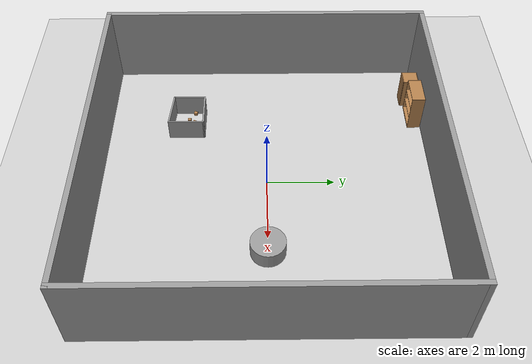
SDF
<sdf version="1.6">
 <world name="default">
  <light name="sun" type="directional">
   <pose>0 0 10 0 -0 0</pose>
   <diffuse>0.8 0.8 0.8 1</diffuse>
   <specular>0.2 0.2 0.2 1</specular>
   <attenuation>
    <range>1000</range>
    <constant>0.9</constant>
    <linear>0.01</linear>
    <quadratic>0.001</quadratic>
   </attenuation>
   <direction>-0.5 0.1 -0.9</direction>
  </light>
  <model name="ground_plane">
   <static>1</static>
   <link name="link">
    <collision name="collision">
     <geometry><plane><normal>0 0 1</normal><size>100 100</size></plane></geometry>
     <surface><friction><ode><mu>100</mu><mu2>50</mu2></ode></friction></surface>
    </collision>
    <visual name="visual">
     <cast_shadows>0</cast_shadows>
     <geometry><plane><normal>0 0 1</normal><size>100 100</size></plane></geometry>
     <material>
      <script><uri>file://media/materials/scripts/gazebo.material</uri><name>Gazebo/Grey</name></script>
     </material>
    </visual>
   </link>
  </model>
  <gravity>0 0 -9.8</gravity>
  <magnetic_field>6e-06 2.3e-05 -4.2e-05</magnetic_field>
  <atmosphere type="adiabatic"/>
  <physics name="default_physics" default="0" type="ode">
   <max_step_size>0.001</max_step_size>
   <real_time_factor>1</real_time_factor>
   <real_time_update_rate>1000</real_time_update_rate>
  </physics>
  <scene><ambient>0.4 0.4 0.4 1</ambient><background>0.7 0.7 0.7 1</background><shadows>1</shadows></scene>
  <audio><device>default</device></audio>
  <spherical_coordinates>
   <surface_model>EARTH_WGS84</surface_model>
   <latitude_deg>0</latitude_deg>
   <longitude_deg>0</longitude_deg>
   <elevation>0</elevation>
   <heading_deg>0</heading_deg>
  </spherical_coordinates>
  <model name="Untitled">
   <link name="Wall_0">
    <collision name="Wall_0_Collision">
     <geometry><box><size>10.15 0.15 2.5</size></box></geometry>
     <pose>0 0 1.25 0 -0 0</pose>
    </collision>
    <visual name="Wall_0_Visual">
     <pose>0 0 1.25 0 -0 0</pose>
     <geometry><box><size>10.15 0.15 2.5</size></box></geometry>
     <material>
      <script><uri>file://media/materials/scripts/gazebo.material</uri><name>Gazebo/Grey</name></script>
      <ambient>1 1 1 1</ambient>
     </material>
     <meta><layer>0</layer></meta>
    </visual>
    <pose>5 0 0 0 -0 1.5708</pose>
   </link>
   <link name="Wall_3">
    <collision name="Wall_3_Collision">
     <geometry><box><size>10.15 0.15 2.5</size></box></geometry>
     <pose>0 0 1.25 0 -0 0</pose>
    </collision>
    <visual name="Wall_3_Visual">
     <pose>0 0 1.25 0 -0 0</pose>
     <geometry><box><size>10.15 0.15 2.5</size></box></geometry>
     <material>
      <script><uri>file://media/materials/scripts/gazebo.material</uri><name>Gazebo/Grey</name></script>
      <ambient>1 1 1 1</ambient>
     </material>
     <meta><layer>0</layer></meta>
    </visual>
    <pose>0 5 0 0 -0 3.14159</pose>
   </link>
   <link name="Wall_7">
    <collision name="Wall_7_Collision">
     <geometry><box><size>10.15 0.15 2.5</size></box></geometry>
     <pose>0 0 1.25 0 -0 0</pose>
    </collision>
    <visual name="Wall_7_Visual">
     <pose>0 0 1.25 0 -0 0</pose>
     <geometry><box><size>10.15 0.15 2.5</size></box></geometry>
     <material>
      <script><uri>file://media/materials/scripts/gazebo.material</uri><name>Gazebo/Grey</name></script>
      <ambient>1 1 1 1</ambient>
     </material>
     <meta><layer>0</layer></meta>
    </visual>
    <pose>-5 0 0 0 -0 -1.5708</pose>
   </link>
   <link name="Wall_9">
    <collision name="Wall_9_Collision">
     <geometry><box><size>10.15 0.15 2.5</size></box></geometry>
     <pose>0 0 1.25 0 -0 0</pose>
    </collision>
    <visual name="Wall_9_Visual">
     <pose>0 0 1.25 0 -0 0</pose>
     <geometry><box><size>10.15 0.15 2.5</size></box></geometry>
     <material>
      <script><uri>file://media/materials/scripts/gazebo.material</uri><name>Gazebo/Grey</name></script>
      <ambient>1 1 1 1</ambient>
     </material>
     <meta><layer>0</layer></meta>
    </visual>
    <pose>0 -5 0 0 -0 0</pose>
   </link>
   <static>1</static>
  </model>
  <model name="bookshelf">
   <static>1</static>
   <link name="link">
    <inertial><mass>1</mass></inertial>
    <collision name="back">
     <pose>0 0.005 0.6 0 -0 0</pose>
     <geometry><box><size>0.9 0.01 1.2</size></box></geometry>
    </collision>
    <visual name="visual1">
     <pose>0 0.005 0.6 0 -0 0</pose>
     <geometry><box><size>0.9 0.01 1.2</size></box></geometry>
     <material>
      <script><uri>file://media/materials/scripts/gazebo.material</uri><name>Gazebo/Wood</name></script>
     </material>
    </visual>
    <collision name="left_side">
     <pose>0.45 -0.195 0.6 0 -0 0</pose>
     <geometry><box><size>0.02 0.4 1.2</size></box></geometry>
    </collision>
    <visual name="visual2">
     <pose>0.45 -0.195 0.6 0 -0 0</pose>
     <geometry><box><size>0.02 0.4 1.2</size></box></geometry>
     <material>
      <script><uri>file://media/materials/scripts/gazebo.material</uri><name>Gazebo/Wood</name></script>
     </material>
    </visual>
    <collision name="right_side">
     <pose>-0.45 -0.195 0.6 0 -0 0</pose>
     <geometry><box><size>0.02 0.4 1.2</size></box></geometry>
    </collision>
    <visual name="visual3">
     <pose>-0.45 -0.195 0.6 0 -0 0</pose>
     <geometry><box><size>0.02 0.4 1.2</size></box></geometry>
     <material>
      <script><uri>file://media/materials/scripts/gazebo.material</uri><name>Gazebo/Wood</name></script>
     </material>
    </visual>
    <collision name="bottom">
     <pose>0 -0.195 0.03 0 -0 0</pose>
     <geometry><box><size>0.88 0.4 0.06</size></box></geometry>
    </collision>
    <visual name="visual4">
     <pose>0 -0.195 0.03 0 -0 0</pose>
     <geometry><box><size>0.88 0.4 0.06</size></box></geometry>
     <material>
      <script><uri>file://media/materials/scripts/gazebo.material</uri><name>Gazebo/Wood</name></script>
     </material>
    </visual>
    <collision name="top">
     <pose>0 -0.195 1.19 0 -0 0</pose>
     <geometry><box><size>0.88 0.4 0.02</size></box></geometry>
    </collision>
    <visual name="visual5">
     <pose>0 -0.195 1.19 0 -0 0</pose>
     <geometry><box><size>0.88 0.4 0.02</size></box></geometry>
     <material>
      <script><uri>file://media/materials/scripts/gazebo.material</uri><name>Gazebo/Wood</name></script>
     </material>
    </visual>
    <collision name="low_shelf">
     <pose>0 -0.195 0.43 0 -0 0</pose>
     <geometry><box><size>0.88 0.4 0.02</size></box></geometry>
    </collision>
    <visual name="visual6">
     <pose>0 -0.195 0.43 0 -0 0</pose>
     <geometry><box><size>0.88 0.4 0.02</size></box></geometry>
     <material>
      <script><uri>file://media/materials/scripts/gazebo.material</uri><name>Gazebo/Wood</name></script>
     </material>
    </visual>
    <collision name="high_shelf">
     <pose>0 -0.195 0.8 0 -0 0</pose>
     <geometry><box><size>0.88 0.4 0.02</size></box></geometry>
    </collision>
    <visual name="visual7">
     <pose>0 -0.195 0.8 0 -0 0</pose>
     <geometry><box><size>0.88 0.4 0.02</size></box></geometry>
     <material>
      <script><uri>file://media/materials/scripts/gazebo.material</uri><name>Gazebo/Wood</name></script>
     </material>
    </visual>
   </link>
   <pose>-2.72611 4.9059 0 0 -0 0</pose>
  </model>
  <model name="Untitled_0">
   <pose>-2.45722 -2.4934 0 0 -0 0</pose>
   <link name="Wall_11">
    <collision name="Wall_11_Collision">
     <geometry><box><size>1.01485 0.05 0.7</size></box></geometry>
     <pose>0 0 0.35 0 -0 0</pose>
    </collision>
    <visual name="Wall_11_Visual">
     <pose>0 0 0.35 0 -0 0</pose>
     <geometry><box><size>1.01485 0.05 0.7</size></box></geometry>
     <material>
      <script><uri>file://media/materials/scripts/gazebo.material</uri><name>Gazebo/Grey</name></script>
      <ambient>1 1 1 1</ambient>
     </material>
     <meta><layer>0</layer></meta>
    </visual>
    <pose>-0.545174 0.051007 0 0 -0 1.56583</pose>
   </link>
   <link name="Wall_13">
    <collision name="Wall_13_Collision">
     <geometry><box><size>1.15 0.05 0.7</size></box></geometry>
     <pose>0 0 0.35 0 -0 0</pose>
    </collision>
    <visual name="Wall_13_Visual">
     <pose>0 0 0.35 0 -0 0</pose>
     <geometry><box><size>1.15 0.05 0.7</size></box></geometry>
     <material>
      <script><uri>file://media/materials/scripts/gazebo.material</uri><name>Gazebo/Grey</name></script>
      <ambient>1 1 1 1</ambient>
     </material>
     <meta><layer>0</layer></meta>
    </visual>
    <pose>0.007222 0.533403 0 0 -0 0</pose>
   </link>
   <link name="Wall_14">
    <collision name="Wall_14_Collision">
     <geometry><box><size>1.11484 0.05 0.7</size></box></geometry>
     <pose>0 0 0.35 0 -0 0</pose>
    </collision>
    <visual name="Wall_14_Visual">
     <pose>0 0 0.35 0 -0 0</pose>
     <geometry><box><size>1.11484 0.05 0.7</size></box></geometry>
     <material>
      <script><uri>file://media/materials/scripts/gazebo.material</uri><name>Gazebo/Grey</name></script>
      <ambient>1 1 1 1</ambient>
     </material>
     <meta><layer>0</layer></meta>
    </visual>
    <pose>0.554826 0.001007 0 0 -0 -1.5753</pose>
   </link>
   <link name="Wall_15">
    <collision name="Wall_15_Collision">
     <geometry><box><size>1.15454 0.05 0.7</size></box></geometry>
     <pose>0 0 0.35 0 -0 0</pose>
    </collision>
    <visual name="Wall_15_Visual">
     <pose>0 0 0.35 0 -0 0</pose>
     <geometry><box><size>1.15454 0.05 0.7</size></box></geometry>
     <material>
      <script><uri>file://media/materials/scripts/gazebo.material</uri><name>Gazebo/Grey</name></script>
      <ambient>1 1 1 1</ambient>
     </material>
     <meta><layer>0</layer></meta>
    </visual>
    <pose>-0.005174 -0.481388 0 0 -0 3.05093</pose>
   </link>
   <static>1</static>
  </model>
  <model name="wood_cube_10cm">
   <link name="link">
    <pose>0 0 0.05 0 -0 0</pose>
    <inertial>
     <mass>0.5167</mass>
     <inertia>
      <ixx>0.000861167</ixx>
      <ixy>0</ixy>
      <ixz>0</ixz>
      <iyy>0.000861167</iyy>
      <iyz>0</iyz>
      <izz>0.000861167</izz>
     </inertia>
    </inertial>
    <collision name="collision">
     <geometry><box><size>0.1 0.1 0.1</size></box></geometry>
     <surface>
      <contact>
       <poissons_ratio>0.347</poissons_ratio>
       <elastic_modulus>8.8e+09</elastic_modulus>
       <ode><kp>100000</kp><kd>100</kd><max_vel>100</max_vel><min_depth>0.001</min_depth></ode>
      </contact>
      <friction>
       <torsional>
        <coefficient>1</coefficient>
        <use_patch_radius>0</use_patch_radius>
        <surface_radius>0.01</surface_radius>
       </torsional>
      </friction>
     </surface>
    </collision>
    <visual name="visual">
     <geometry><box><size>0.1 0.1 0.1</size></box></geometry>
     <material>
      <script><uri>file://media/materials/scripts/gazebo.material</uri><name>Gazebo/Wood</name></script>
     </material>
    </visual>
   </link>
   <pose>-2.91258 -2.23393 0.048987 1.5708 -0 -0.140809</pose>
  </model>
  <model name="wood_cube_10cm_0">
   <link name="link">
    <pose>0 0 0.05 0 -0 0</pose>
    <inertial>
     <mass>0.5167</mass>
     <inertia>
      <ixx>0.000861167</ixx>
      <ixy>0</ixy>
      <ixz>0</ixz>
      <iyy>0.000861167</iyy>
      <iyz>0</iyz>
      <izz>0.000861167</izz>
     </inertia>
    </inertial>
    <collision name="collision">
     <geometry><box><size>0.1 0.1 0.1</size></box></geometry>
     <surface>
      <contact>
       <poissons_ratio>0.347</poissons_ratio>
       <elastic_modulus>8.8e+09</elastic_modulus>
       <ode><kp>100000</kp><kd>100</kd><max_vel>100</max_vel><min_depth>0.001</min_depth></ode>
      </contact>
      <friction>
       <torsional>
        <coefficient>1</coefficient>
        <use_patch_radius>0</use_patch_radius>
        <surface_radius>0.01</surface_radius>
       </torsional>
      </friction>
     </surface>
    </collision>
    <visual name="visual">
     <geometry><box><size>0.1 0.1 0.1</size></box></geometry>
     <material>
      <script><uri>file://media/materials/scripts/gazebo.material</uri><name>Gazebo/Wood</name></script>
     </material>
    </visual>
   </link>
   <pose>-2.36298 -2.08799 0.048987 -1.5708 -0 2.49778</pose>
  </model>
  <model name="wood_cube_10cm_1">
   <link name="link">
    <pose>0 0 0.05 0 -0 0</pose>
    <inertial>
     <mass>0.5167</mass>
     <inertia>
      <ixx>0.000861167</ixx>
      <ixy>0</ixy>
      <ixz>0</ixz>
      <iyy>0.000861167</iyy>
      <iyz>0</iyz>
      <izz>0.000861167</izz>
     </inertia>
    </inertial>
    <collision name="collision">
     <geometry><box><size>0.1 0.1 0.1</size></box></geometry>
     <surface>
      <contact>
       <poissons_ratio>0.347</poissons_ratio>
       <elastic_modulus>8.8e+09</elastic_modulus>
       <ode><kp>100000</kp><kd>100</kd><max_vel>100</max_vel><min_depth>0.001</min_depth></ode>
      </contact>
      <friction>
       <torsional>
        <coefficient>1</coefficient>
        <use_patch_radius>0</use_patch_radius>
        <surface_radius>0.01</surface_radius>
       </torsional>
      </friction>
     </surface>
    </collision>
    <visual name="visual">
     <geometry><box><size>0.1 0.1 0.1</size></box></geometry>
     <material>
      <script><uri>file://media/materials/scripts/gazebo.material</uri><name>Gazebo/Wood</name></script>
     </material>
    </visual>
   </link>
   <pose>-2.50545 -2.28897 -0.001013 0 0 -1.5954</pose>
  </model>
  <model name="wood_cube_10cm_2">
   <link name="link">
    <pose>0 0 0.05 0 -0 0</pose>
    <inertial>
     <mass>0.5167</mass>
     <inertia>
      <ixx>0.000861167</ixx>
      <ixy>0</ixy>
      <ixz>0</ixz>
      <iyy>0.000861167</iyy>
      <iyz>0</iyz>
      <izz>0.000861167</izz>
     </inertia>
    </inertial>
    <collision name="collision">
     <geometry><box><size>0.1 0.1 0.1</size></box></geometry>
     <surface>
      <contact>
       <poissons_ratio>0.347</poissons_ratio>
       <elastic_modulus>8.8e+09</elastic_modulus>
       <ode><kp>100000</kp><kd>100</kd><max_vel>100</max_vel><min_depth>0.001</min_depth></ode>
      </contact>
      <friction>
       <torsional>
        <coefficient>1</coefficient>
        <use_patch_radius>0</use_patch_radius>
        <surface_radius>0.01</surface_radius>
       </torsional>
      </friction>
     </surface>
    </collision>
    <visual name="visual">
     <geometry><box><size>0.1 0.1 0.1</size></box></geometry>
     <material>
      <script><uri>file://media/materials/scripts/gazebo.material</uri><name>Gazebo/Wood</name></script>
     </material>
    </visual>
   </link>
   <pose>-2.38294 -2.54757 -0.001013 0 0 -0.06185</pose>
  </model>
  <model name="wood_cube_10cm_3">
   <link name="link">
    <pose>0 0 0.05 0 -0 0</pose>
    <inertial>
     <mass>0.5167</mass>
     <inertia>
      <ixx>0.000861167</ixx>
      <ixy>0</ixy>
      <ixz>0</ixz>
      <iyy>0.000861167</iyy>
      <iyz>0</iyz>
      <izz>0.000861167</izz>
     </inertia>
    </inertial>
    <collision name="collision">
     <geometry><box><size>0.1 0.1 0.1</size></box></geometry>
     <surface>
      <contact>
       <poissons_ratio>0.347</poissons_ratio>
       <elastic_modulus>8.8e+09</elastic_modulus>
       <ode><kp>100000</kp><kd>100</kd><max_vel>100</max_vel><min_depth>0.001</min_depth></ode>
      </contact>
      <friction>
       <torsional>
        <coefficient>1</coefficient>
        <use_patch_radius>0</use_patch_radius>
        <surface_radius>0.01</surface_radius>
       </torsional>
      </friction>
     </surface>
    </collision>
    <visual name="visual">
     <geometry><box><size>0.1 0.1 0.1</size></box></geometry>
     <material>
      <script><uri>file://media/materials/scripts/gazebo.material</uri><name>Gazebo/Wood</name></script>
     </material>
    </visual>
   </link>
   <pose>-2.61795 -2.46658 -0.001013 0 -0 0</pose>
  </model>
  <model name="cabinet">
   <static>1</static>
   <link name="cabinet_bottom_plate">
    <inertial>
     <pose>0 0 -1 0 -0 0</pose>
     <inertia><ixx>2.05</ixx><ixy>0</ixy><ixz>0</ixz><iyy>2.05</iyy><iyz>0</iyz><izz>2.05</izz></inertia>
     <mass>25</mass>
    </inertial>
    <collision name="cabinet_bottom_plate_geom">
     <pose>0 0 0.01 0 -0 0</pose>
     <geometry><box><size>0.45 0.45 0.02</size></box></geometry>
    </collision>
    <visual name="cabinet_bottom_plate_geom_visual">
     <pose>0 0 0.01 0 -0 0</pose>
     <geometry><box><size>0.45 0.45 0.02</size></box></geometry>
     <material>
      <script><uri>file://media/materials/scripts/gazebo.material</uri><name>Gazebo/Wood</name></script>
     </material>
    </visual>
    <collision name="cabinet_bottom_plate_geom_cabinet_back_plate">
     <pose>0.235 0 0.51 0 -0 0</pose>
     <geometry><box><size>0.02 0.45 1.02</size></box></geometry>
    </collision>
    <visual name="cabinet_bottom_plate_geom_cabinet_back_plate_visual">
     <pose>0.235 0 0.51 0 -0 0</pose>
     <geometry><box><size>0.02 0.45 1.02</size></box></geometry>
     <material>
      <script><uri>file://media/materials/scripts/gazebo.material</uri><name>Gazebo/Wood</name></script>
     </material>
    </visual>
    <collision name="cabinet_bottom_plate_geom_cabinet_left_plate">
     <pose>0 0.235 0.51 0 -0 0</pose>
     <geometry><box><size>0.45 0.02 1.02</size></box></geometry>
    </collision>
    <visual name="cabinet_bottom_plate_geom_cabinet_left_plate_visual">
     <pose>0 0.235 0.51 0 -0 0</pose>
     <geometry><box><size>0.45 0.02 1.02</size></box></geometry>
     <material>
      <script><uri>file://media/materials/scripts/gazebo.material</uri><name>Gazebo/Wood</name></script>
     </material>
    </visual>
    <collision name="cabinet_bottom_plate_geom_cabinet_middle_plate">
     <pose>0 0 0.51 0 -0 0</pose>
     <geometry><box><size>0.45 0.45 0.02</size></box></geometry>
    </collision>
    <visual name="cabinet_bottom_plate_geom_cabinet_middle_plate_visual">
     <pose>0 0 0.51 0 -0 0</pose>
     <geometry><box><size>0.45 0.45 0.02</size></box></geometry>
     <material>
      <script><uri>file://media/materials/scripts/gazebo.material</uri><name>Gazebo/Wood</name></script>
     </material>
    </visual>
    <collision name="cabinet_bottom_plate_geom_cabinet_right_plate">
     <pose>0 -0.235 0.51 0 -0 0</pose>
     <geometry><box><size>0.45 0.02 1.02</size></box></geometry>
    </collision>
    <visual name="cabinet_bottom_plate_geom_cabinet_right_plate_visual">
     <pose>0 -0.235 0.51 0 -0 0</pose>
     <geometry><box><size>0.45 0.02 1.02</size></box></geometry>
     <material>
      <script><uri>file://media/materials/scripts/gazebo.material</uri><name>Gazebo/Wood</name></script>
     </material>
    </visual>
    <collision name="cabinet_bottom_plate_geom_cabinet_top_plate">
     <pose>0 0 1.01 0 -0 0</pose>
     <geometry><box><size>0.45 0.45 0.02</size></box></geometry>
    </collision>
    <visual name="cabinet_bottom_plate_geom_cabinet_top_plate_visual">
     <pose>0 0 1.01 0 -0 0</pose>
     <geometry><box><size>0.45 0.45 0.02</size></box></geometry>
     <material>
      <script><uri>file://media/materials/scripts/gazebo.material</uri><name>Gazebo/Wood</name></script>
     </material>
    </visual>
   </link>
   <pose>-3.52935 4.64587 0 0 -0 0</pose>
  </model>
  <model name="beer_clone">
   <link name="link">
    <pose>0 0 0.115 0 -0 0</pose>
    <inertial>
     <mass>0.39</mass>
     <inertia><ixx>0.00058</ixx><ixy>0</ixy><ixz>0</ixz><iyy>0.00058</iyy><iyz>0</iyz><izz>0.00019</izz></inertia>
    </inertial>
    <visual name="visual">
     <geometry><cylinder><radius>0.025</radius><length>0.15</length></cylinder></geometry>
     <material>
      <script>
       <uri>model://beer/materials/scripts</uri>
       <uri>model://beer/materials/textures</uri>
       <name>Beer/Diffuse</name>
      </script>
      <shader type="pixel"><normal_map>__default__</normal_map></shader>
      <ambient>1 1 1 1</ambient>
      <diffuse>1 1 1 1</diffuse>
      <specular>0 0 0 1</specular>
      <emissive>0 0 0 1</emissive>
     </material>
    </visual>
    <collision name="collision">
     <geometry><cylinder><radius>0.025</radius><length>0.15</length></cylinder></geometry>
     <surface>
      <friction>
       <ode><mu>1</mu><mu2>1</mu2><fdir1>0 0 0</fdir1><slip1>0</slip1><slip2>0</slip2></ode>
       <torsional>
        <coefficient>1</coefficient>
        <patch_radius>0</patch_radius>
        <surface_radius>0</surface_radius>
        <use_patch_radius>1</use_patch_radius>
        <ode><slip>0</slip></ode>
       </torsional>
      </friction>
      <bounce><restitution_coefficient>0</restitution_coefficient><threshold>1e+06</threshold></bounce>
      <contact>
       <collide_without_contact>0</collide_without_contact>
       <collide_without_contact_bitmask>1</collide_without_contact_bitmask>
       <collide_bitmask>1</collide_bitmask>
       <ode>
        <soft_cfm>0</soft_cfm>
        <soft_erp>0.2</soft_erp>
        <kp>1e+13</kp>
        <kd>1</kd>
        <max_vel>0.01</max_vel>
        <min_depth>0</min_depth>
       </ode>
       <bullet>
        <split_impulse>1</split_impulse>
        <split_impulse_penetration_threshold>-0.01</split_impulse_penetration_threshold>
        <soft_cfm>0</soft_cfm>
        <soft_erp>0.2</soft_erp>
        <kp>1e+13</kp>
        <kd>1</kd>
       </bullet>
      </contact>
     </surface>
    </collision>
   </link>
   <static>0</static>
   <pose>2.004 0.006466 0.460003 -3.4e-05 -0.000169 -0.830221</pose>
  </model>
  <model name="unit_cylinder">
   <link name="link">
    <inertial>
     <mass>100</mass>
     <inertia><ixx>8.33333</ixx><ixy>0</ixy><ixz>0</ixz><iyy>8.33333</iyy><iyz>0</iyz><izz>12.5</izz></inertia>
    </inertial>
    <visual name="visual">
     <geometry><cylinder><radius>0.5</radius><length>0.5</length></cylinder></geometry>
     <material>
      <script><name>Gazebo/Grey</name><uri>file://media/materials/scripts/gazebo.material</uri></script>
      <shader type="pixel"><normal_map>__default__</normal_map></shader>
      <ambient>0.3 0.3 0.3 1</ambient>
      <diffuse>0.7 0.7 0.7 1</diffuse>
      <specular>0.01 0.01 0.01 1</specular>
      <emissive>0 0 0 1</emissive>
     </material>
    </visual>
    <collision name="collision">
     <geometry><cylinder><radius>0.5</radius><length>0.5</length></cylinder></geometry>
     <surface>
      <friction>
       <ode><mu>1</mu><mu2>1</mu2><fdir1>0 0 0</fdir1><slip1>0</slip1><slip2>0</slip2></ode>
       <torsional>
        <coefficient>1</coefficient>
        <patch_radius>0</patch_radius>
        <surface_radius>0</surface_radius>
        <use_patch_radius>1</use_patch_radius>
        <ode><slip>0</slip></ode>
       </torsional>
      </friction>
      <bounce><restitution_coefficient>0</restitution_coefficient><threshold>1e+06</threshold></bounce>
      <contact>
       <collide_without_contact>0</collide_without_contact>
       <collide_without_contact_bitmask>1</collide_without_contact_bitmask>
       <collide_bitmask>1</collide_bitmask>
       <ode>
        <soft_cfm>0</soft_cfm>
        <soft_erp>0.2</soft_erp>
        <kp>1e+13</kp>
        <kd>1</kd>
        <max_vel>0.01</max_vel>
        <min_depth>0</min_depth>
       </ode>
       <bullet>
        <split_impulse>1</split_impulse>
        <split_impulse_penetration_threshold>-0.01</split_impulse_penetration_threshold>
        <soft_cfm>0</soft_cfm>
        <soft_erp>0.2</soft_erp>
        <kp>1e+13</kp>
        <kd>1</kd>
       </bullet>
      </contact>
     </surface>
    </collision>
   </link>
   <static>0</static>
   <pose>2.46453 0.006477 0.25 0 0 -0.000194</pose>
  </model>
 </world>
</sdf>
